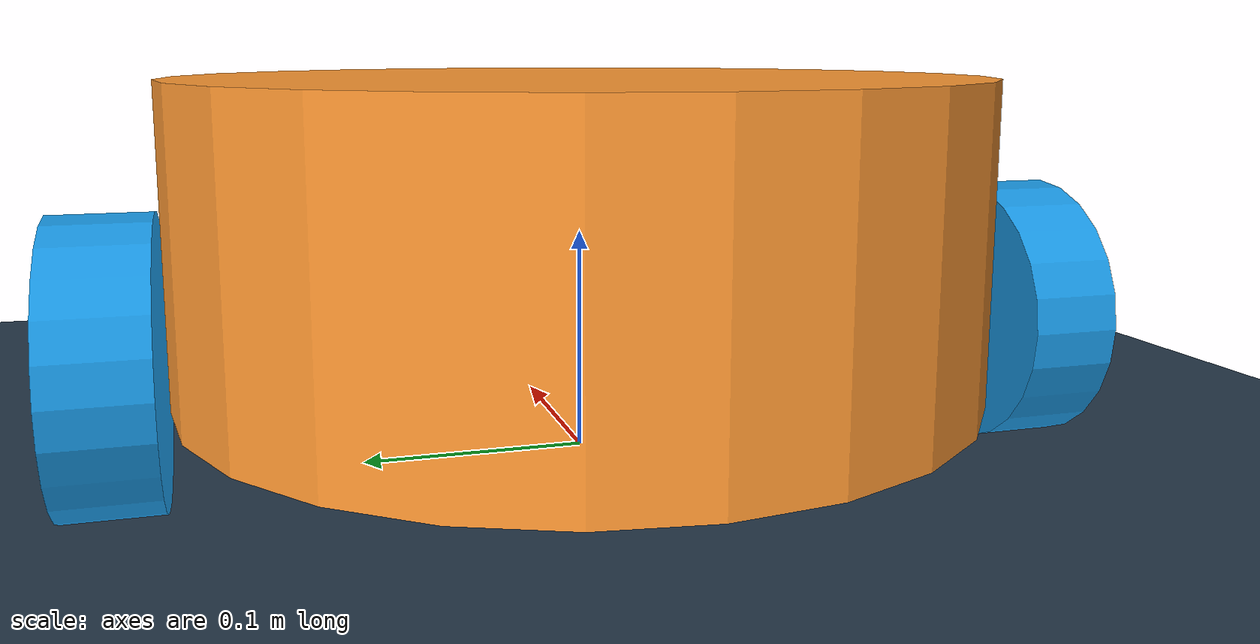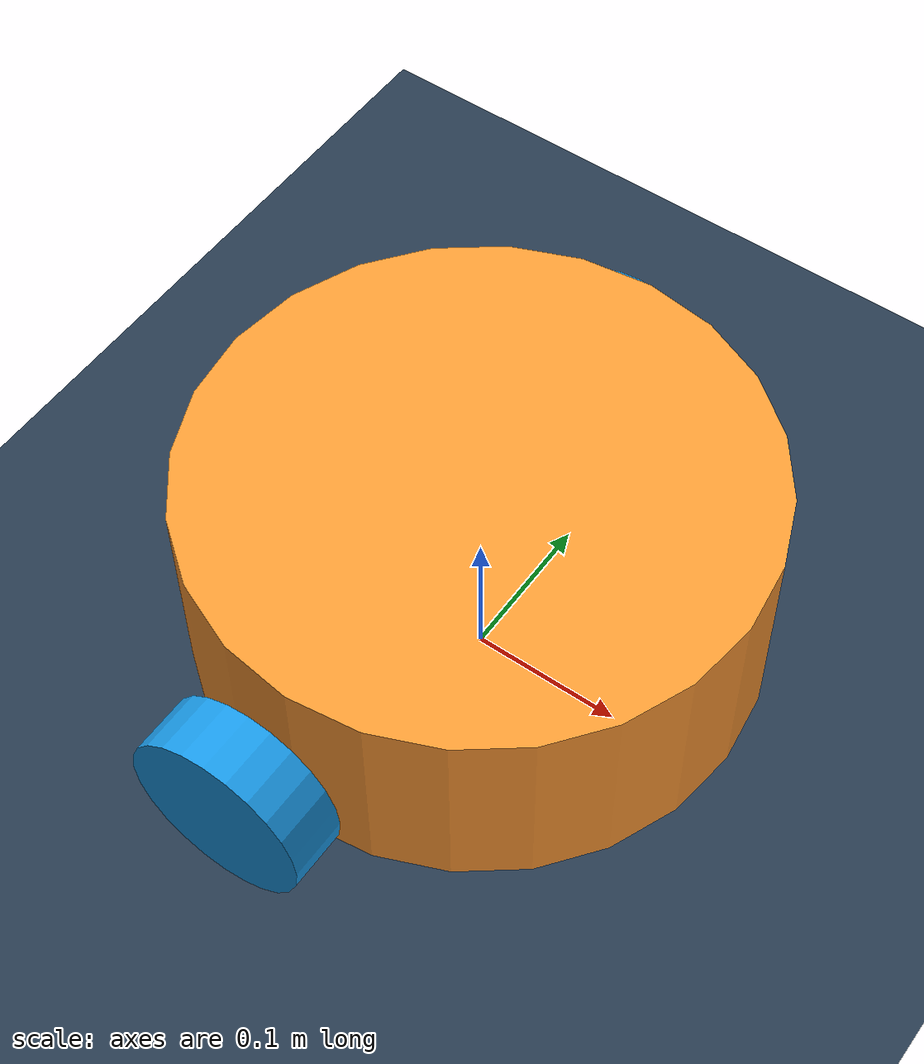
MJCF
<mujoco model="diffbot">
<include file="scene.xml"/>

  <worldbody>

    <body name="pusher1" pos="0 0 0">

      <freejoint/>

      <!-- robot base -->
      <geom name="base"
            type="cylinder"
            pos="0 0 0.1"
            size="0.18 0.07"
            rgba="1.0 0.6 0.2 1"/>

      <!-- left wheel-->
      <body name="left_wheel" pos="-0.03 0.2 0.06" quat="0.707388 -0.706825 0 0">
        <joint name="left_hinge" type="hinge" axis="0 0 1" damping="0.02"/>
        <geom  name="left_geom" type="cylinder" size="0.06 0.02" rgba="0.1 0.6 0.9 1"/>
      </body>

      <!-- right wheel -->
      <body name="right_wheel" pos="-0.03 -0.2 0.06" quat="0.707388 -0.706825 0 0">
        <joint name="right_hinge" type="hinge" axis="0 0 1" damping="0.02"/>
        <geom  name="right_geom" type="cylinder" size="0.06 0.02" rgba="0.1 0.6 0.9 1"/>
      </body>

      <geom name="front wheel" pos="0.1 0 0.02" type="sphere" size=".02" condim="1" priority="1"/>

    </body>

  </worldbody>

  <tendon>
  <fixed name="forward">
    <joint joint="left_hinge" coef=".5"/>
    <joint joint="right_hinge" coef=".5"/>
  </fixed>
  <fixed name="turn">
    <joint joint="left_hinge" coef="-.5"/>
    <joint joint="right_hinge" coef=".5"/>
  </fixed>
</tendon>

<actuator>
  <motor name="forward" tendon="forward" ctrlrange="-1. 1."/>
  <motor name="turn" tendon="turn" ctrlrange="-1. 1."/>
</actuator>

<sensor>
    <jointactuatorfrc name="right" joint="right_hinge"/>
    <jointactuatorfrc name="left" joint="left_hinge"/>
  </sensor>

</mujoco>

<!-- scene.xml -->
<mujoco>
  <compiler meshdir="asset" texturedir="asset"/>

  <statistic meansize=".05"/>

  <visual>
    <rgba haze="0.15 0.25 0.35 1"/>
    <quality shadowsize="4096"/>
    <map stiffness="700" shadowscale="0.5" fogstart="1" fogend="15" zfar="40" haze="1"/>
  </visual>

  <asset>
    <texture type="skybox" builtin="gradient" rgb1="0.3 0.5 0.7" rgb2="0 0 0" width="512" height="512"/>
    <texture name="texplane" type="2d" builtin="checker" rgb1=".2 .3 .4" rgb2=".1 0.15 0.2"
      width="512" height="512" mark="cross" markrgb=".8 .8 .8"/>

    <material name="matplane" reflectance="0.3" texture="texplane" texrepeat="10 10" texuniform="true"/>
  </asset>

  <worldbody>
    <light diffuse=".5 .5 .5" pos="0 0 3" dir="0 0 -1"/>
    <light directional="true" diffuse=".8 .8 .8" specular="0.2 0.2 0.2" pos="0 0 4" dir="0 0 -1"/>

    <geom name="ground" type="plane" size="5 5 0.1" pos="0 0 0" quat="1 0 0 0" material="matplane" condim="1"/>

    <camera name="topdown" pos="0 0 2.5" quat="1 0 0 0"/>

  </worldbody>
</mujoco>
